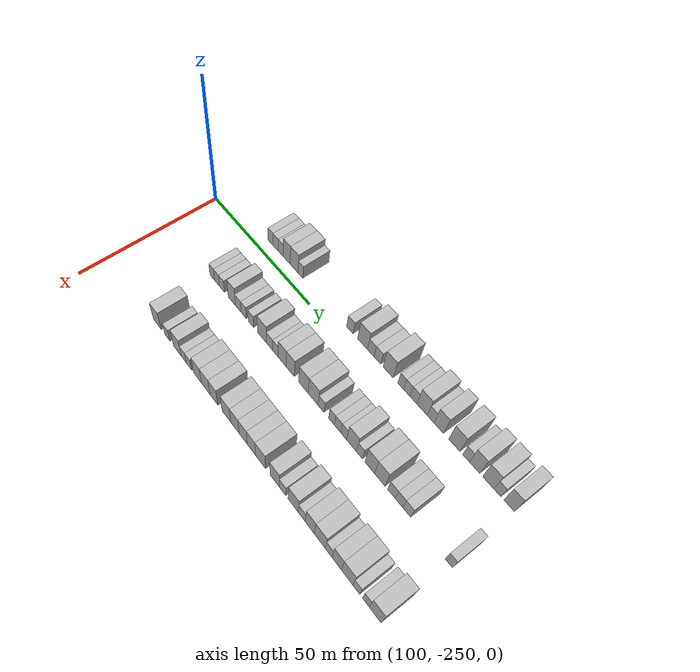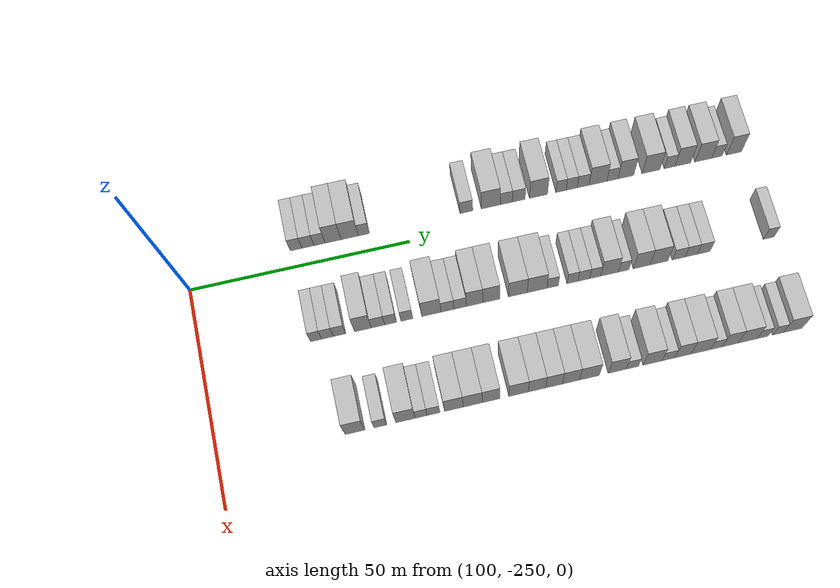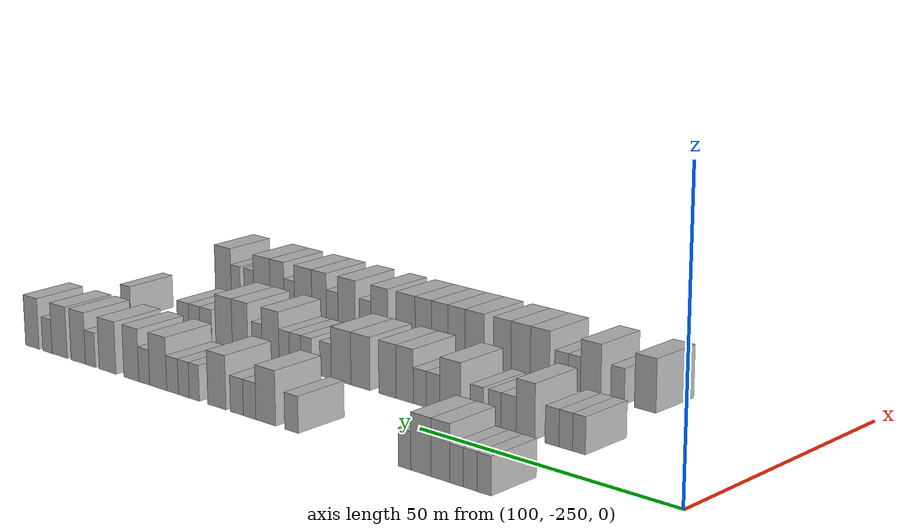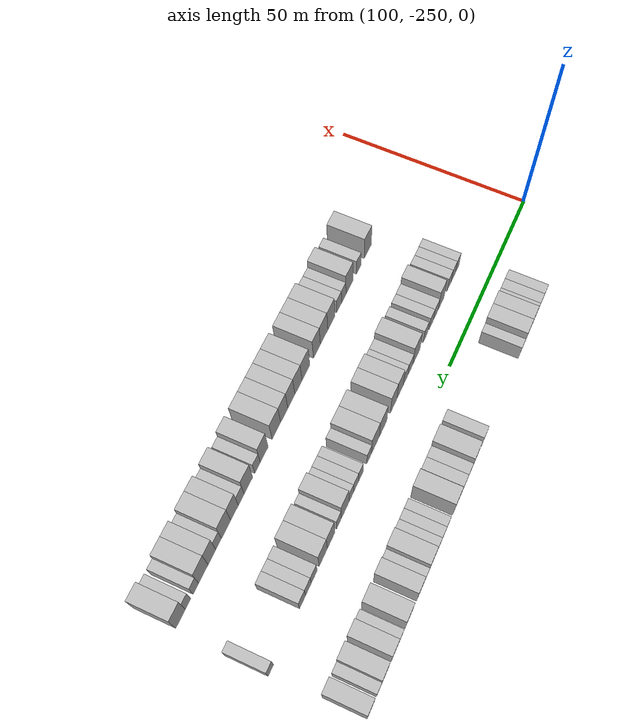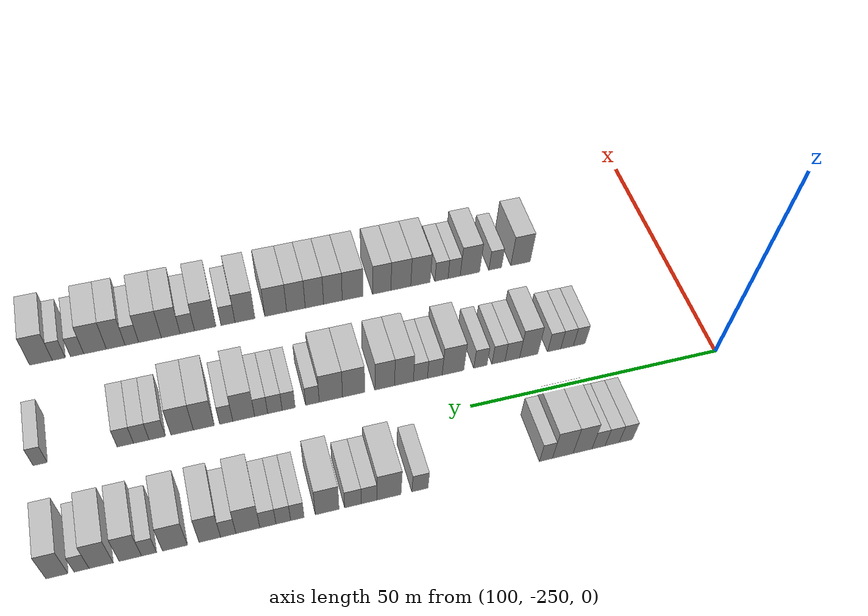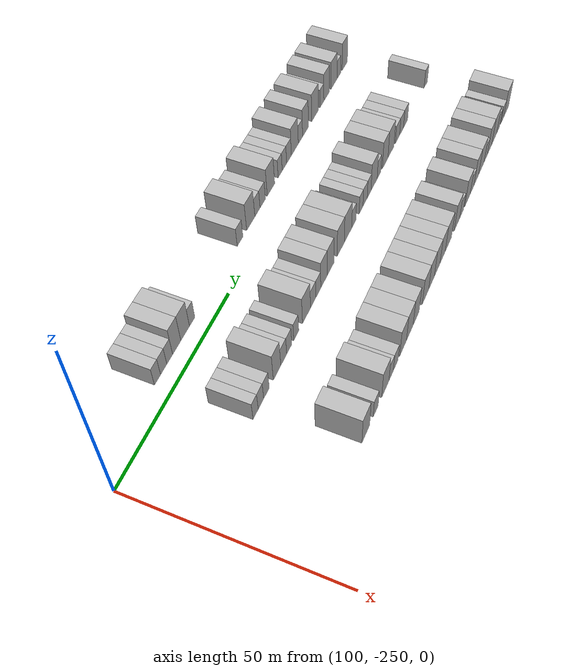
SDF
<sdf version="1.6">
 <world name="default">
  <model name="building_613">
   <static>1</static>
   <pose>91.0000 -225.2650 0 0.000000 0.000000 0.000000</pose>
   <link name="link">
    <pose>0 0 3.00 0 0 0</pose>
    <collision name="collision"><geometry><box><size>10.0000 2.6324 6.0000</size></box></geometry></collision>
    <visual name="visual">
     <cast_shadows>0</cast_shadows>
     <geometry><box><size>10.0000 2.6324 6.0000</size></box></geometry>
     <material>
      <script>
       <uri>model://HANNAS_wall/materials/scripts</uri>
       <uri>model://HANNAS_wall/materials/textures</uri>
       <name>vrc/HANNAS_wall</name>
      </script>
     </material>
    </visual>
   </link>
  </model>
  <model name="building_614">
   <static>1</static>
   <pose>91.0000 -222.5758 0 0.000000 0.000000 0.000000</pose>
   <link name="link">
    <pose>0 0 3.00 0 0 0</pose>
    <collision name="collision"><geometry><box><size>10.0000 2.7462 6.0000</size></box></geometry></collision>
    <visual name="visual">
     <cast_shadows>0</cast_shadows>
     <geometry><box><size>10.0000 2.7462 6.0000</size></box></geometry>
     <material>
      <script>
       <uri>model://HANNAS_wall/materials/scripts</uri>
       <uri>model://HANNAS_wall/materials/textures</uri>
       <name>vrc/HANNAS_wall</name>
      </script>
     </material>
    </visual>
   </link>
  </model>
  <model name="building_615">
   <static>1</static>
   <pose>91.0000 -219.9265 0 0.000000 0.000000 0.000000</pose>
   <link name="link">
    <pose>0 0 3.00 0 0 0</pose>
    <collision name="collision"><geometry><box><size>10.0000 2.5523 6.0000</size></box></geometry></collision>
    <visual name="visual">
     <cast_shadows>0</cast_shadows>
     <geometry><box><size>10.0000 2.5523 6.0000</size></box></geometry>
     <material>
      <script>
       <uri>model://HANNAS_wall/materials/scripts</uri>
       <uri>model://HANNAS_wall/materials/textures</uri>
       <name>vrc/HANNAS_wall</name>
      </script>
     </material>
    </visual>
   </link>
  </model>
  <model name="building_616">
   <static>1</static>
   <pose>91.0000 -216.8252 0 0.000000 0.000000 0.000000</pose>
   <link name="link">
    <pose>0 0 4.50 0 0 0</pose>
    <collision name="collision"><geometry><box><size>10.0000 3.6504 9.0000</size></box></geometry></collision>
    <visual name="visual">
     <cast_shadows>0</cast_shadows>
     <geometry><box><size>10.0000 3.6504 9.0000</size></box></geometry>
     <material>
      <script>
       <uri>model://HANNAS_wall/materials/scripts</uri>
       <uri>model://HANNAS_wall/materials/textures</uri>
       <name>vrc/HANNAS_wall</name>
      </script>
     </material>
    </visual>
   </link>
  </model>
  <model name="building_617">
   <static>1</static>
   <pose>91.0000 -213.0126 0 0.000000 0.000000 0.000000</pose>
   <link name="link">
    <pose>0 0 4.50 0 0 0</pose>
    <collision name="collision"><geometry><box><size>10.0000 3.9747 9.0000</size></box></geometry></collision>
    <visual name="visual">
     <cast_shadows>0</cast_shadows>
     <geometry><box><size>10.0000 3.9747 9.0000</size></box></geometry>
     <material>
      <script>
       <uri>model://HANNAS_wall/materials/scripts</uri>
       <uri>model://HANNAS_wall/materials/textures</uri>
       <name>vrc/HANNAS_wall</name>
      </script>
     </material>
    </visual>
   </link>
  </model>
  <model name="building_618">
   <static>1</static>
   <pose>91.0000 -209.7760 0 0.000000 0.000000 0.000000</pose>
   <link name="link">
    <pose>0 0 3.00 0 0 0</pose>
    <collision name="collision"><geometry><box><size>10.0000 2.4985 6.0000</size></box></geometry></collision>
    <visual name="visual">
     <cast_shadows>0</cast_shadows>
     <geometry><box><size>10.0000 2.4985 6.0000</size></box></geometry>
     <material>
      <script>
       <uri>model://HANNAS_wall/materials/scripts</uri>
       <uri>model://HANNAS_wall/materials/textures</uri>
       <name>vrc/HANNAS_wall</name>
      </script>
     </material>
    </visual>
   </link>
  </model>
  <model name="building_619">
   <static>1</static>
   <pose>91.0000 -186.0560 0 0.000000 0.000000 0.000000</pose>
   <link name="link">
    <pose>0 0 3.00 0 0 0</pose>
    <collision name="collision"><geometry><box><size>10.0000 2.9805 6.0000</size></box></geometry></collision>
    <visual name="visual">
     <cast_shadows>0</cast_shadows>
     <geometry><box><size>10.0000 2.9805 6.0000</size></box></geometry>
     <material>
      <script>
       <uri>model://HANNAS_wall/materials/scripts</uri>
       <uri>model://HANNAS_wall/materials/textures</uri>
       <name>vrc/HANNAS_wall</name>
      </script>
     </material>
    </visual>
   </link>
  </model>
  <model name="building_620">
   <static>1</static>
   <pose>91.0000 -180.3499 0 0.000000 0.000000 0.000000</pose>
   <link name="link">
    <pose>0 0 4.50 0 0 0</pose>
    <collision name="collision"><geometry><box><size>10.0000 4.4319 9.0000</size></box></geometry></collision>
    <visual name="visual">
     <cast_shadows>0</cast_shadows>
     <geometry><box><size>10.0000 4.4319 9.0000</size></box></geometry>
     <material>
      <script>
       <uri>model://HANNAS_wall/materials/scripts</uri>
       <uri>model://HANNAS_wall/materials/textures</uri>
       <name>vrc/HANNAS_wall</name>
      </script>
     </material>
    </visual>
   </link>
  </model>
  <model name="building_621">
   <static>1</static>
   <pose>91.0000 -176.7166 0 0.000000 0.000000 0.000000</pose>
   <link name="link">
    <pose>0 0 3.00 0 0 0</pose>
    <collision name="collision"><geometry><box><size>10.0000 2.8346 6.0000</size></box></geometry></collision>
    <visual name="visual">
     <cast_shadows>0</cast_shadows>
     <geometry><box><size>10.0000 2.8346 6.0000</size></box></geometry>
     <material>
      <script>
       <uri>model://HANNAS_wall/materials/scripts</uri>
       <uri>model://HANNAS_wall/materials/textures</uri>
       <name>vrc/HANNAS_wall</name>
      </script>
     </material>
    </visual>
   </link>
  </model>
  <model name="building_622">
   <static>1</static>
   <pose>91.0000 -173.8030 0 0.000000 0.000000 0.000000</pose>
   <link name="link">
    <pose>0 0 3.00 0 0 0</pose>
    <collision name="collision"><geometry><box><size>10.0000 2.9927 6.0000</size></box></geometry></collision>
    <visual name="visual">
     <cast_shadows>0</cast_shadows>
     <geometry><box><size>10.0000 2.9927 6.0000</size></box></geometry>
     <material>
      <script>
       <uri>model://HANNAS_wall/materials/scripts</uri>
       <uri>model://HANNAS_wall/materials/textures</uri>
       <name>vrc/HANNAS_wall</name>
      </script>
     </material>
    </visual>
   </link>
  </model>
  <model name="building_623">
   <static>1</static>
   <pose>91.0000 -169.1819 0 0.000000 0.000000 0.000000</pose>
   <link name="link">
    <pose>0 0 4.50 0 0 0</pose>
    <collision name="collision"><geometry><box><size>10.0000 4.2495 9.0000</size></box></geometry></collision>
    <visual name="visual">
     <cast_shadows>0</cast_shadows>
     <geometry><box><size>10.0000 4.2495 9.0000</size></box></geometry>
     <material>
      <script>
       <uri>model://HANNAS_wall/materials/scripts</uri>
       <uri>model://HANNAS_wall/materials/textures</uri>
       <name>vrc/HANNAS_wall</name>
      </script>
     </material>
    </visual>
   </link>
  </model>
  <model name="building_624">
   <static>1</static>
   <pose>91.0000 -163.8563 0 0.000000 0.000000 0.000000</pose>
   <link name="link">
    <pose>0 0 3.00 0 0 0</pose>
    <collision name="collision"><geometry><box><size>10.0000 2.4017 6.0000</size></box></geometry></collision>
    <visual name="visual">
     <cast_shadows>0</cast_shadows>
     <geometry><box><size>10.0000 2.4017 6.0000</size></box></geometry>
     <material>
      <script>
       <uri>model://HANNAS_wall/materials/scripts</uri>
       <uri>model://HANNAS_wall/materials/textures</uri>
       <name>vrc/HANNAS_wall</name>
      </script>
     </material>
    </visual>
   </link>
  </model>
  <model name="building_625">
   <static>1</static>
   <pose>91.0000 -161.3566 0 0.000000 0.000000 0.000000</pose>
   <link name="link">
    <pose>0 0 3.00 0 0 0</pose>
    <collision name="collision"><geometry><box><size>10.0000 2.5976 6.0000</size></box></geometry></collision>
    <visual name="visual">
     <cast_shadows>0</cast_shadows>
     <geometry><box><size>10.0000 2.5976 6.0000</size></box></geometry>
     <material>
      <script>
       <uri>model://HANNAS_wall/materials/scripts</uri>
       <uri>model://HANNAS_wall/materials/textures</uri>
       <name>vrc/HANNAS_wall</name>
      </script>
     </material>
    </visual>
   </link>
  </model>
  <model name="building_626">
   <static>1</static>
   <pose>91.0000 -158.6432 0 0.000000 0.000000 0.000000</pose>
   <link name="link">
    <pose>0 0 3.00 0 0 0</pose>
    <collision name="collision"><geometry><box><size>10.0000 2.8290 6.0000</size></box></geometry></collision>
    <visual name="visual">
     <cast_shadows>0</cast_shadows>
     <geometry><box><size>10.0000 2.8290 6.0000</size></box></geometry>
     <material>
      <script>
       <uri>model://HANNAS_wall/materials/scripts</uri>
       <uri>model://HANNAS_wall/materials/textures</uri>
       <name>vrc/HANNAS_wall</name>
      </script>
     </material>
    </visual>
   </link>
  </model>
  <model name="building_627">
   <static>1</static>
   <pose>91.0000 -155.1216 0 0.000000 0.000000 0.000000</pose>
   <link name="link">
    <pose>0 0 4.50 0 0 0</pose>
    <collision name="collision"><geometry><box><size>10.0000 4.2142 9.0000</size></box></geometry></collision>
    <visual name="visual">
     <cast_shadows>0</cast_shadows>
     <geometry><box><size>10.0000 4.2142 9.0000</size></box></geometry>
     <material>
      <script>
       <uri>model://HANNAS_wall/materials/scripts</uri>
       <uri>model://HANNAS_wall/materials/textures</uri>
       <name>vrc/HANNAS_wall</name>
      </script>
     </material>
    </visual>
   </link>
  </model>
  <model name="building_628">
   <static>1</static>
   <pose>91.0000 -151.6805 0 0.000000 0.000000 0.000000</pose>
   <link name="link">
    <pose>0 0 3.00 0 0 0</pose>
    <collision name="collision"><geometry><box><size>10.0000 2.6679 6.0000</size></box></geometry></collision>
    <visual name="visual">
     <cast_shadows>0</cast_shadows>
     <geometry><box><size>10.0000 2.6679 6.0000</size></box></geometry>
     <material>
      <script>
       <uri>model://HANNAS_wall/materials/scripts</uri>
       <uri>model://HANNAS_wall/materials/textures</uri>
       <name>vrc/HANNAS_wall</name>
      </script>
     </material>
    </visual>
   </link>
  </model>
  <model name="building_629">
   <static>1</static>
   <pose>91.0000 -148.4720 0 0.000000 0.000000 0.000000</pose>
   <link name="link">
    <pose>0 0 4.50 0 0 0</pose>
    <collision name="collision"><geometry><box><size>10.0000 3.7491 9.0000</size></box></geometry></collision>
    <visual name="visual">
     <cast_shadows>0</cast_shadows>
     <geometry><box><size>10.0000 3.7491 9.0000</size></box></geometry>
     <material>
      <script>
       <uri>model://HANNAS_wall/materials/scripts</uri>
       <uri>model://HANNAS_wall/materials/textures</uri>
       <name>vrc/HANNAS_wall</name>
      </script>
     </material>
    </visual>
   </link>
  </model>
  <model name="building_630">
   <static>1</static>
   <pose>91.0000 -142.4522 0 0.000000 0.000000 0.000000</pose>
   <link name="link">
    <pose>0 0 4.50 0 0 0</pose>
    <collision name="collision"><geometry><box><size>10.0000 4.2907 9.0000</size></box></geometry></collision>
    <visual name="visual">
     <cast_shadows>0</cast_shadows>
     <geometry><box><size>10.0000 4.2907 9.0000</size></box></geometry>
     <material>
      <script>
       <uri>model://HANNAS_wall/materials/scripts</uri>
       <uri>model://HANNAS_wall/materials/textures</uri>
       <name>vrc/HANNAS_wall</name>
      </script>
     </material>
    </visual>
   </link>
  </model>
  <model name="building_631">
   <static>1</static>
   <pose>91.0000 -138.0229 0 0.000000 0.000000 0.000000</pose>
   <link name="link">
    <pose>0 0 3.00 0 0 0</pose>
    <collision name="collision"><geometry><box><size>10.0000 2.5678 6.0000</size></box></geometry></collision>
    <visual name="visual">
     <cast_shadows>0</cast_shadows>
     <geometry><box><size>10.0000 2.5678 6.0000</size></box></geometry>
     <material>
      <script>
       <uri>model://HANNAS_wall/materials/scripts</uri>
       <uri>model://HANNAS_wall/materials/textures</uri>
       <name>vrc/HANNAS_wall</name>
      </script>
     </material>
    </visual>
   </link>
  </model>
  <model name="building_632">
   <static>1</static>
   <pose>91.0000 -134.8380 0 0.000000 0.000000 0.000000</pose>
   <link name="link">
    <pose>0 0 4.50 0 0 0</pose>
    <collision name="collision"><geometry><box><size>10.0000 3.8020 9.0000</size></box></geometry></collision>
    <visual name="visual">
     <cast_shadows>0</cast_shadows>
     <geometry><box><size>10.0000 3.8020 9.0000</size></box></geometry>
     <material>
      <script>
       <uri>model://HANNAS_wall/materials/scripts</uri>
       <uri>model://HANNAS_wall/materials/textures</uri>
       <name>vrc/HANNAS_wall</name>
      </script>
     </material>
    </visual>
   </link>
  </model>
  <model name="building_633">
   <static>1</static>
   <pose>91.0000 -129.9118 0 0.000000 0.000000 0.000000</pose>
   <link name="link">
    <pose>0 0 4.50 0 0 0</pose>
    <collision name="collision"><geometry><box><size>10.0000 4.0505 9.0000</size></box></geometry></collision>
    <visual name="visual">
     <cast_shadows>0</cast_shadows>
     <geometry><box><size>10.0000 4.0505 9.0000</size></box></geometry>
     <material>
      <script>
       <uri>model://HANNAS_wall/materials/scripts</uri>
       <uri>model://HANNAS_wall/materials/textures</uri>
       <name>vrc/HANNAS_wall</name>
      </script>
     </material>
    </visual>
   </link>
  </model>
  <model name="building_634">
   <static>1</static>
   <pose>91.0000 -126.6230 0 0.000000 0.000000 0.000000</pose>
   <link name="link">
    <pose>0 0 3.00 0 0 0</pose>
    <collision name="collision"><geometry><box><size>10.0000 2.5271 6.0000</size></box></geometry></collision>
    <visual name="visual">
     <cast_shadows>0</cast_shadows>
     <geometry><box><size>10.0000 2.5271 6.0000</size></box></geometry>
     <material>
      <script>
       <uri>model://HANNAS_wall/materials/scripts</uri>
       <uri>model://HANNAS_wall/materials/textures</uri>
       <name>vrc/HANNAS_wall</name>
      </script>
     </material>
    </visual>
   </link>
  </model>
  <model name="building_635">
   <static>1</static>
   <pose>91.0000 -122.5244 0 0.000000 0.000000 0.000000</pose>
   <link name="link">
    <pose>0 0 4.50 0 0 0</pose>
    <collision name="collision"><geometry><box><size>10.0000 3.6700 9.0000</size></box></geometry></collision>
    <visual name="visual">
     <cast_shadows>0</cast_shadows>
     <geometry><box><size>10.0000 3.6700 9.0000</size></box></geometry>
     <material>
      <script>
       <uri>model://HANNAS_wall/materials/scripts</uri>
       <uri>model://HANNAS_wall/materials/textures</uri>
       <name>vrc/HANNAS_wall</name>
      </script>
     </material>
    </visual>
   </link>
  </model>
  <model name="building_803">
   <static>1</static>
   <pose>113.0000 -224.8095 0 0.000000 0.000000 0.000000</pose>
   <link name="link">
    <pose>0 0 3.00 0 0 0</pose>
    <collision name="collision"><geometry><box><size>10.0000 2.4473 6.0000</size></box></geometry></collision>
    <visual name="visual">
     <cast_shadows>0</cast_shadows>
     <geometry><box><size>10.0000 2.4473 6.0000</size></box></geometry>
     <material>
      <script>
       <uri>model://HANNAS_wall/materials/scripts</uri>
       <uri>model://HANNAS_wall/materials/textures</uri>
       <name>vrc/HANNAS_wall</name>
      </script>
     </material>
    </visual>
   </link>
  </model>
  <model name="building_804">
   <static>1</static>
   <pose>113.0000 -222.2734 0 0.000000 0.000000 0.000000</pose>
   <link name="link">
    <pose>0 0 3.00 0 0 0</pose>
    <collision name="collision"><geometry><box><size>10.0000 2.6249 6.0000</size></box></geometry></collision>
    <visual name="visual">
     <cast_shadows>0</cast_shadows>
     <geometry><box><size>10.0000 2.6249 6.0000</size></box></geometry>
     <material>
      <script>
       <uri>model://HANNAS_wall/materials/scripts</uri>
       <uri>model://HANNAS_wall/materials/textures</uri>
       <name>vrc/HANNAS_wall</name>
      </script>
     </material>
    </visual>
   </link>
  </model>
  <model name="building_805">
   <static>1</static>
   <pose>113.0000 -219.6023 0 0.000000 0.000000 0.000000</pose>
   <link name="link">
    <pose>0 0 3.00 0 0 0</pose>
    <collision name="collision"><geometry><box><size>10.0000 2.7174 6.0000</size></box></geometry></collision>
    <visual name="visual">
     <cast_shadows>0</cast_shadows>
     <geometry><box><size>10.0000 2.7174 6.0000</size></box></geometry>
     <material>
      <script>
       <uri>model://HANNAS_wall/materials/scripts</uri>
       <uri>model://HANNAS_wall/materials/textures</uri>
       <name>vrc/HANNAS_wall</name>
      </script>
     </material>
    </visual>
   </link>
  </model>
  <model name="building_806">
   <static>1</static>
   <pose>113.0000 -214.3700 0 0.000000 0.000000 0.000000</pose>
   <link name="link">
    <pose>0 0 4.50 0 0 0</pose>
    <collision name="collision"><geometry><box><size>10.0000 3.7471 9.0000</size></box></geometry></collision>
    <visual name="visual">
     <cast_shadows>0</cast_shadows>
     <geometry><box><size>10.0000 3.7471 9.0000</size></box></geometry>
     <material>
      <script>
       <uri>model://HANNAS_wall/materials/scripts</uri>
       <uri>model://HANNAS_wall/materials/textures</uri>
       <name>vrc/HANNAS_wall</name>
      </script>
     </material>
    </visual>
   </link>
  </model>
  <model name="building_807">
   <static>1</static>
   <pose>113.0000 -210.9999 0 0.000000 0.000000 0.000000</pose>
   <link name="link">
    <pose>0 0 3.00 0 0 0</pose>
    <collision name="collision"><geometry><box><size>10.0000 2.9931 6.0000</size></box></geometry></collision>
    <visual name="visual">
     <cast_shadows>0</cast_shadows>
     <geometry><box><size>10.0000 2.9931 6.0000</size></box></geometry>
     <material>
      <script>
       <uri>model://HANNAS_wall/materials/scripts</uri>
       <uri>model://HANNAS_wall/materials/textures</uri>
       <name>vrc/HANNAS_wall</name>
      </script>
     </material>
    </visual>
   </link>
  </model>
  <model name="building_808">
   <static>1</static>
   <pose>113.0000 -208.1831 0 0.000000 0.000000 0.000000</pose>
   <link name="link">
    <pose>0 0 3.00 0 0 0</pose>
    <collision name="collision"><geometry><box><size>10.0000 2.6407 6.0000</size></box></geometry></collision>
    <visual name="visual">
     <cast_shadows>0</cast_shadows>
     <geometry><box><size>10.0000 2.6407 6.0000</size></box></geometry>
     <material>
      <script>
       <uri>model://HANNAS_wall/materials/scripts</uri>
       <uri>model://HANNAS_wall/materials/textures</uri>
       <name>vrc/HANNAS_wall</name>
      </script>
     </material>
    </visual>
   </link>
  </model>
  <model name="building_809">
   <static>1</static>
   <pose>113.0000 -204.5242 0 0.000000 0.000000 0.000000</pose>
   <link name="link">
    <pose>0 0 3.00 0 0 0</pose>
    <collision name="collision"><geometry><box><size>10.0000 2.6770 6.0000</size></box></geometry></collision>
    <visual name="visual">
     <cast_shadows>0</cast_shadows>
     <geometry><box><size>10.0000 2.6770 6.0000</size></box></geometry>
     <material>
      <script>
       <uri>model://HANNAS_wall/materials/scripts</uri>
       <uri>model://HANNAS_wall/materials/textures</uri>
       <name>vrc/HANNAS_wall</name>
      </script>
     </material>
    </visual>
   </link>
  </model>
  <model name="building_810">
   <static>1</static>
   <pose>113.0000 -199.0123 0 0.000000 0.000000 0.000000</pose>
   <link name="link">
    <pose>0 0 4.50 0 0 0</pose>
    <collision name="collision"><geometry><box><size>10.0000 4.3470 9.0000</size></box></geometry></collision>
    <visual name="visual">
     <cast_shadows>0</cast_shadows>
     <geometry><box><size>10.0000 4.3470 9.0000</size></box></geometry>
     <material>
      <script>
       <uri>model://HANNAS_wall/materials/scripts</uri>
       <uri>model://HANNAS_wall/materials/textures</uri>
       <name>vrc/HANNAS_wall</name>
      </script>
     </material>
    </visual>
   </link>
  </model>
  <model name="building_811">
   <static>1</static>
   <pose>113.0000 -195.3739 0 0.000000 0.000000 0.000000</pose>
   <link name="link">
    <pose>0 0 3.00 0 0 0</pose>
    <collision name="collision"><geometry><box><size>10.0000 2.9297 6.0000</size></box></geometry></collision>
    <visual name="visual">
     <cast_shadows>0</cast_shadows>
     <geometry><box><size>10.0000 2.9297 6.0000</size></box></geometry>
     <material>
      <script>
       <uri>model://HANNAS_wall/materials/scripts</uri>
       <uri>model://HANNAS_wall/materials/textures</uri>
       <name>vrc/HANNAS_wall</name>
      </script>
     </material>
    </visual>
   </link>
  </model>
  <model name="building_812">
   <static>1</static>
   <pose>113.0000 -192.5090 0 0.000000 0.000000 0.000000</pose>
   <link name="link">
    <pose>0 0 3.00 0 0 0</pose>
    <collision name="collision"><geometry><box><size>10.0000 2.8000 6.0000</size></box></geometry></collision>
    <visual name="visual">
     <cast_shadows>0</cast_shadows>
     <geometry><box><size>10.0000 2.8000 6.0000</size></box></geometry>
     <material>
      <script>
       <uri>model://HANNAS_wall/materials/scripts</uri>
       <uri>model://HANNAS_wall/materials/textures</uri>
       <name>vrc/HANNAS_wall</name>
      </script>
     </material>
    </visual>
   </link>
  </model>
  <model name="building_813">
   <static>1</static>
   <pose>113.0000 -189.2434 0 0.000000 0.000000 0.000000</pose>
   <link name="link">
    <pose>0 0 4.50 0 0 0</pose>
    <collision name="collision"><geometry><box><size>10.0000 3.7311 9.0000</size></box></geometry></collision>
    <visual name="visual">
     <cast_shadows>0</cast_shadows>
     <geometry><box><size>10.0000 3.7311 9.0000</size></box></geometry>
     <material>
      <script>
       <uri>model://HANNAS_wall/materials/scripts</uri>
       <uri>model://HANNAS_wall/materials/textures</uri>
       <name>vrc/HANNAS_wall</name>
      </script>
     </material>
    </visual>
   </link>
  </model>
  <model name="building_814">
   <static>1</static>
   <pose>113.0000 -185.4632 0 0.000000 0.000000 0.000000</pose>
   <link name="link">
    <pose>0 0 4.50 0 0 0</pose>
    <collision name="collision"><geometry><box><size>10.0000 3.8293 9.0000</size></box></geometry></collision>
    <visual name="visual">
     <cast_shadows>0</cast_shadows>
     <geometry><box><size>10.0000 3.8293 9.0000</size></box></geometry>
     <material>
      <script>
       <uri>model://HANNAS_wall/materials/scripts</uri>
       <uri>model://HANNAS_wall/materials/textures</uri>
       <name>vrc/HANNAS_wall</name>
      </script>
     </material>
    </visual>
   </link>
  </model>
  <model name="building_815">
   <static>1</static>
   <pose>113.0000 -179.4053 0 0.000000 0.000000 0.000000</pose>
   <link name="link">
    <pose>0 0 4.50 0 0 0</pose>
    <collision name="collision"><geometry><box><size>10.0000 4.2865 9.0000</size></box></geometry></collision>
    <visual name="visual">
     <cast_shadows>0</cast_shadows>
     <geometry><box><size>10.0000 4.2865 9.0000</size></box></geometry>
     <material>
      <script>
       <uri>model://HANNAS_wall/materials/scripts</uri>
       <uri>model://HANNAS_wall/materials/textures</uri>
       <name>vrc/HANNAS_wall</name>
      </script>
     </material>
    </visual>
   </link>
  </model>
  <model name="building_816">
   <static>1</static>
   <pose>113.0000 -175.0159 0 0.000000 0.000000 0.000000</pose>
   <link name="link">
    <pose>0 0 4.50 0 0 0</pose>
    <collision name="collision"><geometry><box><size>10.0000 4.4923 9.0000</size></box></geometry></collision>
    <visual name="visual">
     <cast_shadows>0</cast_shadows>
     <geometry><box><size>10.0000 4.4923 9.0000</size></box></geometry>
     <material>
      <script>
       <uri>model://HANNAS_wall/materials/scripts</uri>
       <uri>model://HANNAS_wall/materials/textures</uri>
       <name>vrc/HANNAS_wall</name>
      </script>
     </material>
    </visual>
   </link>
  </model>
  <model name="building_817">
   <static>1</static>
   <pose>113.0000 -171.4652 0 0.000000 0.000000 0.000000</pose>
   <link name="link">
    <pose>0 0 3.00 0 0 0</pose>
    <collision name="collision"><geometry><box><size>10.0000 2.6091 6.0000</size></box></geometry></collision>
    <visual name="visual">
     <cast_shadows>0</cast_shadows>
     <geometry><box><size>10.0000 2.6091 6.0000</size></box></geometry>
     <material>
      <script>
       <uri>model://HANNAS_wall/materials/scripts</uri>
       <uri>model://HANNAS_wall/materials/textures</uri>
       <name>vrc/HANNAS_wall</name>
      </script>
     </material>
    </visual>
   </link>
  </model>
  <model name="building_818">
   <static>1</static>
   <pose>113.0000 -166.9174 0 0.000000 0.000000 0.000000</pose>
   <link name="link">
    <pose>0 0 3.00 0 0 0</pose>
    <collision name="collision"><geometry><box><size>10.0000 2.4864 6.0000</size></box></geometry></collision>
    <visual name="visual">
     <cast_shadows>0</cast_shadows>
     <geometry><box><size>10.0000 2.4864 6.0000</size></box></geometry>
     <material>
      <script>
       <uri>model://HANNAS_wall/materials/scripts</uri>
       <uri>model://HANNAS_wall/materials/textures</uri>
       <name>vrc/HANNAS_wall</name>
      </script>
     </material>
    </visual>
   </link>
  </model>
  <model name="building_819">
   <static>1</static>
   <pose>113.0000 -164.2951 0 0.000000 0.000000 0.000000</pose>
   <link name="link">
    <pose>0 0 3.00 0 0 0</pose>
    <collision name="collision"><geometry><box><size>10.0000 2.7584 6.0000</size></box></geometry></collision>
    <visual name="visual">
     <cast_shadows>0</cast_shadows>
     <geometry><box><size>10.0000 2.7584 6.0000</size></box></geometry>
     <material>
      <script>
       <uri>model://HANNAS_wall/materials/scripts</uri>
       <uri>model://HANNAS_wall/materials/textures</uri>
       <name>vrc/HANNAS_wall</name>
      </script>
     </material>
    </visual>
   </link>
  </model>
  <model name="building_820">
   <static>1</static>
   <pose>113.0000 -161.6855 0 0.000000 0.000000 0.000000</pose>
   <link name="link">
    <pose>0 0 3.00 0 0 0</pose>
    <collision name="collision"><geometry><box><size>10.0000 2.4607 6.0000</size></box></geometry></collision>
    <visual name="visual">
     <cast_shadows>0</cast_shadows>
     <geometry><box><size>10.0000 2.4607 6.0000</size></box></geometry>
     <material>
      <script>
       <uri>model://HANNAS_wall/materials/scripts</uri>
       <uri>model://HANNAS_wall/materials/textures</uri>
       <name>vrc/HANNAS_wall</name>
      </script>
     </material>
    </visual>
   </link>
  </model>
  <model name="building_821">
   <static>1</static>
   <pose>113.0000 -158.4030 0 0.000000 0.000000 0.000000</pose>
   <link name="link">
    <pose>0 0 4.50 0 0 0</pose>
    <collision name="collision"><geometry><box><size>10.0000 4.1045 9.0000</size></box></geometry></collision>
    <visual name="visual">
     <cast_shadows>0</cast_shadows>
     <geometry><box><size>10.0000 4.1045 9.0000</size></box></geometry>
     <material>
      <script>
       <uri>model://HANNAS_wall/materials/scripts</uri>
       <uri>model://HANNAS_wall/materials/textures</uri>
       <name>vrc/HANNAS_wall</name>
      </script>
     </material>
    </visual>
   </link>
  </model>
  <model name="building_822">
   <static>1</static>
   <pose>113.0000 -155.1134 0 0.000000 0.000000 0.000000</pose>
   <link name="link">
    <pose>0 0 3.00 0 0 0</pose>
    <collision name="collision"><geometry><box><size>10.0000 2.4747 6.0000</size></box></geometry></collision>
    <visual name="visual">
     <cast_shadows>0</cast_shadows>
     <geometry><box><size>10.0000 2.4747 6.0000</size></box></geometry>
     <material>
      <script>
       <uri>model://HANNAS_wall/materials/scripts</uri>
       <uri>model://HANNAS_wall/materials/textures</uri>
       <name>vrc/HANNAS_wall</name>
      </script>
     </material>
    </visual>
   </link>
  </model>
  <model name="building_823">
   <static>1</static>
   <pose>113.0000 -150.9324 0 0.000000 0.000000 0.000000</pose>
   <link name="link">
    <pose>0 0 4.50 0 0 0</pose>
    <collision name="collision"><geometry><box><size>10.0000 3.8872 9.0000</size></box></geometry></collision>
    <visual name="visual">
     <cast_shadows>0</cast_shadows>
     <geometry><box><size>10.0000 3.8872 9.0000</size></box></geometry>
     <material>
      <script>
       <uri>model://HANNAS_wall/materials/scripts</uri>
       <uri>model://HANNAS_wall/materials/textures</uri>
       <name>vrc/HANNAS_wall</name>
      </script>
     </material>
    </visual>
   </link>
  </model>
  <model name="building_824">
   <static>1</static>
   <pose>113.0000 -146.9062 0 0.000000 0.000000 0.000000</pose>
   <link name="link">
    <pose>0 0 4.50 0 0 0</pose>
    <collision name="collision"><geometry><box><size>10.0000 4.1653 9.0000</size></box></geometry></collision>
    <visual name="visual">
     <cast_shadows>0</cast_shadows>
     <geometry><box><size>10.0000 4.1653 9.0000</size></box></geometry>
     <material>
      <script>
       <uri>model://HANNAS_wall/materials/scripts</uri>
       <uri>model://HANNAS_wall/materials/textures</uri>
       <name>vrc/HANNAS_wall</name>
      </script>
     </material>
    </visual>
   </link>
  </model>
  <model name="building_825">
   <static>1</static>
   <pose>113.0000 -142.3256 0 0.000000 0.000000 0.000000</pose>
   <link name="link">
    <pose>0 0 3.00 0 0 0</pose>
    <collision name="collision"><geometry><box><size>10.0000 2.9959 6.0000</size></box></geometry></collision>
    <visual name="visual">
     <cast_shadows>0</cast_shadows>
     <geometry><box><size>10.0000 2.9959 6.0000</size></box></geometry>
     <material>
      <script>
       <uri>model://HANNAS_wall/materials/scripts</uri>
       <uri>model://HANNAS_wall/materials/textures</uri>
       <name>vrc/HANNAS_wall</name>
      </script>
     </material>
    </visual>
   </link>
  </model>
  <model name="building_826">
   <static>1</static>
   <pose>113.0000 -139.4045 0 0.000000 0.000000 0.000000</pose>
   <link name="link">
    <pose>0 0 3.00 0 0 0</pose>
    <collision name="collision"><geometry><box><size>10.0000 2.8463 6.0000</size></box></geometry></collision>
    <visual name="visual">
     <cast_shadows>0</cast_shadows>
     <geometry><box><size>10.0000 2.8463 6.0000</size></box></geometry>
     <material>
      <script>
       <uri>model://HANNAS_wall/materials/scripts</uri>
       <uri>model://HANNAS_wall/materials/textures</uri>
       <name>vrc/HANNAS_wall</name>
      </script>
     </material>
    </visual>
   </link>
  </model>
  <model name="building_827">
   <static>1</static>
   <pose>113.0000 -136.4875 0 0.000000 0.000000 0.000000</pose>
   <link name="link">
    <pose>0 0 3.00 0 0 0</pose>
    <collision name="collision"><geometry><box><size>10.0000 2.9878 6.0000</size></box></geometry></collision>
    <visual name="visual">
     <cast_shadows>0</cast_shadows>
     <geometry><box><size>10.0000 2.9878 6.0000</size></box></geometry>
     <material>
      <script>
       <uri>model://HANNAS_wall/materials/scripts</uri>
       <uri>model://HANNAS_wall/materials/textures</uri>
       <name>vrc/HANNAS_wall</name>
      </script>
     </material>
    </visual>
   </link>
  </model>
  <model name="building_828">
   <static>1</static>
   <pose>113.0000 -121.1724 0 0.000000 0.000000 0.000000</pose>
   <link name="link">
    <pose>0 0 3.00 0 0 0</pose>
    <collision name="collision"><geometry><box><size>10.0000 2.5475 6.0000</size></box></geometry></collision>
    <visual name="visual">
     <cast_shadows>0</cast_shadows>
     <geometry><box><size>10.0000 2.5475 6.0000</size></box></geometry>
     <material>
      <script>
       <uri>model://HANNAS_wall/materials/scripts</uri>
       <uri>model://HANNAS_wall/materials/textures</uri>
       <name>vrc/HANNAS_wall</name>
      </script>
     </material>
    </visual>
   </link>
  </model>
  <model name="building_971">
   <static>1</static>
   <pose>135.0000 -220.4615 0 0.000000 0.000000 0.000000</pose>
   <link name="link">
    <pose>0 0 4.50 0 0 0</pose>
    <collision name="collision"><geometry><box><size>10.0000 4.2523 9.0000</size></box></geometry></collision>
    <visual name="visual">
     <cast_shadows>0</cast_shadows>
     <geometry><box><size>10.0000 4.2523 9.0000</size></box></geometry>
     <material>
      <script>
       <uri>model://HANNAS_wall/materials/scripts</uri>
       <uri>model://HANNAS_wall/materials/textures</uri>
       <name>vrc/HANNAS_wall</name>
      </script>
     </material>
    </visual>
   </link>
  </model>
  <model name="building_972">
   <static>1</static>
   <pose>135.0000 -214.9565 0 0.000000 0.000000 0.000000</pose>
   <link name="link">
    <pose>0 0 3.00 0 0 0</pose>
    <collision name="collision"><geometry><box><size>10.0000 2.7577 6.0000</size></box></geometry></collision>
    <visual name="visual">
     <cast_shadows>0</cast_shadows>
     <geometry><box><size>10.0000 2.7577 6.0000</size></box></geometry>
     <material>
      <script>
       <uri>model://HANNAS_wall/materials/scripts</uri>
       <uri>model://HANNAS_wall/materials/textures</uri>
       <name>vrc/HANNAS_wall</name>
      </script>
     </material>
    </visual>
   </link>
  </model>
  <model name="building_973">
   <static>1</static>
   <pose>135.0000 -209.4856 0 0.000000 0.000000 0.000000</pose>
   <link name="link">
    <pose>0 0 4.50 0 0 0</pose>
    <collision name="collision"><geometry><box><size>10.0000 4.1841 9.0000</size></box></geometry></collision>
    <visual name="visual">
     <cast_shadows>0</cast_shadows>
     <geometry><box><size>10.0000 4.1841 9.0000</size></box></geometry>
     <material>
      <script>
       <uri>model://HANNAS_wall/materials/scripts</uri>
       <uri>model://HANNAS_wall/materials/textures</uri>
       <name>vrc/HANNAS_wall</name>
      </script>
     </material>
    </visual>
   </link>
  </model>
  <model name="building_974">
   <static>1</static>
   <pose>135.0000 -206.0922 0 0.000000 0.000000 0.000000</pose>
   <link name="link">
    <pose>0 0 3.00 0 0 0</pose>
    <collision name="collision"><geometry><box><size>10.0000 2.6028 6.0000</size></box></geometry></collision>
    <visual name="visual">
     <cast_shadows>0</cast_shadows>
     <geometry><box><size>10.0000 2.6028 6.0000</size></box></geometry>
     <material>
      <script>
       <uri>model://HANNAS_wall/materials/scripts</uri>
       <uri>model://HANNAS_wall/materials/textures</uri>
       <name>vrc/HANNAS_wall</name>
      </script>
     </material>
    </visual>
   </link>
  </model>
  <model name="building_975">
   <static>1</static>
   <pose>135.0000 -203.3800 0 0.000000 0.000000 0.000000</pose>
   <link name="link">
    <pose>0 0 3.00 0 0 0</pose>
    <collision name="collision"><geometry><box><size>10.0000 2.8216 6.0000</size></box></geometry></collision>
    <visual name="visual">
     <cast_shadows>0</cast_shadows>
     <geometry><box><size>10.0000 2.8216 6.0000</size></box></geometry>
     <material>
      <script>
       <uri>model://HANNAS_wall/materials/scripts</uri>
       <uri>model://HANNAS_wall/materials/textures</uri>
       <name>vrc/HANNAS_wall</name>
      </script>
     </material>
    </visual>
   </link>
  </model>
  <model name="building_976">
   <static>1</static>
   <pose>135.0000 -198.9129 0 0.000000 0.000000 0.000000</pose>
   <link name="link">
    <pose>0 0 4.50 0 0 0</pose>
    <collision name="collision"><geometry><box><size>10.0000 4.1125 9.0000</size></box></geometry></collision>
    <visual name="visual">
     <cast_shadows>0</cast_shadows>
     <geometry><box><size>10.0000 4.1125 9.0000</size></box></geometry>
     <material>
      <script>
       <uri>model://HANNAS_wall/materials/scripts</uri>
       <uri>model://HANNAS_wall/materials/textures</uri>
       <name>vrc/HANNAS_wall</name>
      </script>
     </material>
    </visual>
   </link>
  </model>
  <model name="building_977">
   <static>1</static>
   <pose>135.0000 -194.7643 0 0.000000 0.000000 0.000000</pose>
   <link name="link">
    <pose>0 0 4.50 0 0 0</pose>
    <collision name="collision"><geometry><box><size>10.0000 4.1847 9.0000</size></box></geometry></collision>
    <visual name="visual">
     <cast_shadows>0</cast_shadows>
     <geometry><box><size>10.0000 4.1847 9.0000</size></box></geometry>
     <material>
      <script>
       <uri>model://HANNAS_wall/materials/scripts</uri>
       <uri>model://HANNAS_wall/materials/textures</uri>
       <name>vrc/HANNAS_wall</name>
      </script>
     </material>
    </visual>
   </link>
  </model>
  <model name="building_978">
   <static>1</static>
   <pose>135.0000 -190.7522 0 0.000000 0.000000 0.000000</pose>
   <link name="link">
    <pose>0 0 4.50 0 0 0</pose>
    <collision name="collision"><geometry><box><size>10.0000 3.8395 9.0000</size></box></geometry></collision>
    <visual name="visual">
     <cast_shadows>0</cast_shadows>
     <geometry><box><size>10.0000 3.8395 9.0000</size></box></geometry>
     <material>
      <script>
       <uri>model://HANNAS_wall/materials/scripts</uri>
       <uri>model://HANNAS_wall/materials/textures</uri>
       <name>vrc/HANNAS_wall</name>
      </script>
     </material>
    </visual>
   </link>
  </model>
  <model name="building_979">
   <static>1</static>
   <pose>135.0000 -184.6831 0 0.000000 0.000000 0.000000</pose>
   <link name="link">
    <pose>0 0 4.50 0 0 0</pose>
    <collision name="collision"><geometry><box><size>10.0000 4.2989 9.0000</size></box></geometry></collision>
    <visual name="visual">
     <cast_shadows>0</cast_shadows>
     <geometry><box><size>10.0000 4.2989 9.0000</size></box></geometry>
     <material>
      <script>
       <uri>model://HANNAS_wall/materials/scripts</uri>
       <uri>model://HANNAS_wall/materials/textures</uri>
       <name>vrc/HANNAS_wall</name>
      </script>
     </material>
    </visual>
   </link>
  </model>
  <model name="building_980">
   <static>1</static>
   <pose>135.0000 -180.6098 0 0.000000 0.000000 0.000000</pose>
   <link name="link">
    <pose>0 0 4.50 0 0 0</pose>
    <collision name="collision"><geometry><box><size>10.0000 3.8477 9.0000</size></box></geometry></collision>
    <visual name="visual">
     <cast_shadows>0</cast_shadows>
     <geometry><box><size>10.0000 3.8477 9.0000</size></box></geometry>
     <material>
      <script>
       <uri>model://HANNAS_wall/materials/scripts</uri>
       <uri>model://HANNAS_wall/materials/textures</uri>
       <name>vrc/HANNAS_wall</name>
      </script>
     </material>
    </visual>
   </link>
  </model>
  <model name="building_981">
   <static>1</static>
   <pose>135.0000 -176.7970 0 0.000000 0.000000 0.000000</pose>
   <link name="link">
    <pose>0 0 4.50 0 0 0</pose>
    <collision name="collision"><geometry><box><size>10.0000 3.7778 9.0000</size></box></geometry></collision>
    <visual name="visual">
     <cast_shadows>0</cast_shadows>
     <geometry><box><size>10.0000 3.7778 9.0000</size></box></geometry>
     <material>
      <script>
       <uri>model://HANNAS_wall/materials/scripts</uri>
       <uri>model://HANNAS_wall/materials/textures</uri>
       <name>vrc/HANNAS_wall</name>
      </script>
     </material>
    </visual>
   </link>
  </model>
  <model name="building_982">
   <static>1</static>
   <pose>135.0000 -173.0127 0 0.000000 0.000000 0.000000</pose>
   <link name="link">
    <pose>0 0 4.50 0 0 0</pose>
    <collision name="collision"><geometry><box><size>10.0000 3.7908 9.0000</size></box></geometry></collision>
    <visual name="visual">
     <cast_shadows>0</cast_shadows>
     <geometry><box><size>10.0000 3.7908 9.0000</size></box></geometry>
     <material>
      <script>
       <uri>model://HANNAS_wall/materials/scripts</uri>
       <uri>model://HANNAS_wall/materials/textures</uri>
       <name>vrc/HANNAS_wall</name>
      </script>
     </material>
    </visual>
   </link>
  </model>
  <model name="building_983">
   <static>1</static>
   <pose>135.0000 -168.8988 0 0.000000 0.000000 0.000000</pose>
   <link name="link">
    <pose>0 0 4.50 0 0 0</pose>
    <collision name="collision"><geometry><box><size>10.0000 4.4371 9.0000</size></box></geometry></collision>
    <visual name="visual">
     <cast_shadows>0</cast_shadows>
     <geometry><box><size>10.0000 4.4371 9.0000</size></box></geometry>
     <material>
      <script>
       <uri>model://HANNAS_wall/materials/scripts</uri>
       <uri>model://HANNAS_wall/materials/textures</uri>
       <name>vrc/HANNAS_wall</name>
      </script>
     </material>
    </visual>
   </link>
  </model>
  <model name="building_984">
   <static>1</static>
   <pose>135.0000 -162.6687 0 0.000000 0.000000 0.000000</pose>
   <link name="link">
    <pose>0 0 4.50 0 0 0</pose>
    <collision name="collision"><geometry><box><size>10.0000 4.0229 9.0000</size></box></geometry></collision>
    <visual name="visual">
     <cast_shadows>0</cast_shadows>
     <geometry><box><size>10.0000 4.0229 9.0000</size></box></geometry>
     <material>
      <script>
       <uri>model://HANNAS_wall/materials/scripts</uri>
       <uri>model://HANNAS_wall/materials/textures</uri>
       <name>vrc/HANNAS_wall</name>
      </script>
     </material>
    </visual>
   </link>
  </model>
  <model name="building_985">
   <static>1</static>
   <pose>135.0000 -159.2546 0 0.000000 0.000000 0.000000</pose>
   <link name="link">
    <pose>0 0 3.00 0 0 0</pose>
    <collision name="collision"><geometry><box><size>10.0000 2.8053 6.0000</size></box></geometry></collision>
    <visual name="visual">
     <cast_shadows>0</cast_shadows>
     <geometry><box><size>10.0000 2.8053 6.0000</size></box></geometry>
     <material>
      <script>
       <uri>model://HANNAS_wall/materials/scripts</uri>
       <uri>model://HANNAS_wall/materials/textures</uri>
       <name>vrc/HANNAS_wall</name>
      </script>
     </material>
    </visual>
   </link>
  </model>
  <model name="building_986">
   <static>1</static>
   <pose>135.0000 -154.7241 0 0.000000 0.000000 0.000000</pose>
   <link name="link">
    <pose>0 0 4.50 0 0 0</pose>
    <collision name="collision"><geometry><box><size>10.0000 4.2558 9.0000</size></box></geometry></collision>
    <visual name="visual">
     <cast_shadows>0</cast_shadows>
     <geometry><box><size>10.0000 4.2558 9.0000</size></box></geometry>
     <material>
      <script>
       <uri>model://HANNAS_wall/materials/scripts</uri>
       <uri>model://HANNAS_wall/materials/textures</uri>
       <name>vrc/HANNAS_wall</name>
      </script>
     </material>
    </visual>
   </link>
  </model>
  <model name="building_987">
   <static>1</static>
   <pose>135.0000 -151.1660 0 0.000000 0.000000 0.000000</pose>
   <link name="link">
    <pose>0 0 3.00 0 0 0</pose>
    <collision name="collision"><geometry><box><size>10.0000 2.8604 6.0000</size></box></geometry></collision>
    <visual name="visual">
     <cast_shadows>0</cast_shadows>
     <geometry><box><size>10.0000 2.8604 6.0000</size></box></geometry>
     <material>
      <script>
       <uri>model://HANNAS_wall/materials/scripts</uri>
       <uri>model://HANNAS_wall/materials/textures</uri>
       <name>vrc/HANNAS_wall</name>
      </script>
     </material>
    </visual>
   </link>
  </model>
  <model name="building_988">
   <static>1</static>
   <pose>135.0000 -147.8887 0 0.000000 0.000000 0.000000</pose>
   <link name="link">
    <pose>0 0 4.50 0 0 0</pose>
    <collision name="collision"><geometry><box><size>10.0000 3.6943 9.0000</size></box></geometry></collision>
    <visual name="visual">
     <cast_shadows>0</cast_shadows>
     <geometry><box><size>10.0000 3.6943 9.0000</size></box></geometry>
     <material>
      <script>
       <uri>model://HANNAS_wall/materials/scripts</uri>
       <uri>model://HANNAS_wall/materials/textures</uri>
       <name>vrc/HANNAS_wall</name>
      </script>
     </material>
    </visual>
   </link>
  </model>
  <model name="building_989">
   <static>1</static>
   <pose>135.0000 -143.8219 0 0.000000 0.000000 0.000000</pose>
   <link name="link">
    <pose>0 0 4.50 0 0 0</pose>
    <collision name="collision"><geometry><box><size>10.0000 4.4394 9.0000</size></box></geometry></collision>
    <visual name="visual">
     <cast_shadows>0</cast_shadows>
     <geometry><box><size>10.0000 4.4394 9.0000</size></box></geometry>
     <material>
      <script>
       <uri>model://HANNAS_wall/materials/scripts</uri>
       <uri>model://HANNAS_wall/materials/textures</uri>
       <name>vrc/HANNAS_wall</name>
      </script>
     </material>
    </visual>
   </link>
  </model>
  <model name="building_990">
   <static>1</static>
   <pose>135.0000 -140.2691 0 0.000000 0.000000 0.000000</pose>
   <link name="link">
    <pose>0 0 3.00 0 0 0</pose>
    <collision name="collision"><geometry><box><size>10.0000 2.6662 6.0000</size></box></geometry></collision>
    <visual name="visual">
     <cast_shadows>0</cast_shadows>
     <geometry><box><size>10.0000 2.6662 6.0000</size></box></geometry>
     <material>
      <script>
       <uri>model://HANNAS_wall/materials/scripts</uri>
       <uri>model://HANNAS_wall/materials/textures</uri>
       <name>vrc/HANNAS_wall</name>
      </script>
     </material>
    </visual>
   </link>
  </model>
  <model name="building_991">
   <static>1</static>
   <pose>135.0000 -137.1243 0 0.000000 0.000000 0.000000</pose>
   <link name="link">
    <pose>0 0 4.50 0 0 0</pose>
    <collision name="collision"><geometry><box><size>10.0000 3.6235 9.0000</size></box></geometry></collision>
    <visual name="visual">
     <cast_shadows>0</cast_shadows>
     <geometry><box><size>10.0000 3.6235 9.0000</size></box></geometry>
     <material>
      <script>
       <uri>model://HANNAS_wall/materials/scripts</uri>
       <uri>model://HANNAS_wall/materials/textures</uri>
       <name>vrc/HANNAS_wall</name>
      </script>
     </material>
    </visual>
   </link>
  </model>
  <model name="building_992">
   <static>1</static>
   <pose>135.0000 -133.1325 0 0.000000 0.000000 0.000000</pose>
   <link name="link">
    <pose>0 0 4.50 0 0 0</pose>
    <collision name="collision"><geometry><box><size>10.0000 4.3600 9.0000</size></box></geometry></collision>
    <visual name="visual">
     <cast_shadows>0</cast_shadows>
     <geometry><box><size>10.0000 4.3600 9.0000</size></box></geometry>
     <material>
      <script>
       <uri>model://HANNAS_wall/materials/scripts</uri>
       <uri>model://HANNAS_wall/materials/textures</uri>
       <name>vrc/HANNAS_wall</name>
      </script>
     </material>
    </visual>
   </link>
  </model>
  <model name="building_993">
   <static>1</static>
   <pose>135.0000 -129.6760 0 0.000000 0.000000 0.000000</pose>
   <link name="link">
    <pose>0 0 3.00 0 0 0</pose>
    <collision name="collision"><geometry><box><size>10.0000 2.5532 6.0000</size></box></geometry></collision>
    <visual name="visual">
     <cast_shadows>0</cast_shadows>
     <geometry><box><size>10.0000 2.5532 6.0000</size></box></geometry>
     <material>
      <script>
       <uri>model://HANNAS_wall/materials/scripts</uri>
       <uri>model://HANNAS_wall/materials/textures</uri>
       <name>vrc/HANNAS_wall</name>
      </script>
     </material>
    </visual>
   </link>
  </model>
  <model name="building_994">
   <static>1</static>
   <pose>135.0000 -126.1612 0 0.000000 0.000000 0.000000</pose>
   <link name="link">
    <pose>0 0 3.00 0 0 0</pose>
    <collision name="collision"><geometry><box><size>10.0000 2.4763 6.0000</size></box></geometry></collision>
    <visual name="visual">
     <cast_shadows>0</cast_shadows>
     <geometry><box><size>10.0000 2.4763 6.0000</size></box></geometry>
     <material>
      <script>
       <uri>model://HANNAS_wall/materials/scripts</uri>
       <uri>model://HANNAS_wall/materials/textures</uri>
       <name>vrc/HANNAS_wall</name>
      </script>
     </material>
    </visual>
   </link>
  </model>
  <model name="building_995">
   <static>1</static>
   <pose>135.0000 -122.7712 0 0.000000 0.000000 0.000000</pose>
   <link name="link">
    <pose>0 0 4.50 0 0 0</pose>
    <collision name="collision"><geometry><box><size>10.0000 4.3037 9.0000</size></box></geometry></collision>
    <visual name="visual">
     <cast_shadows>0</cast_shadows>
     <geometry><box><size>10.0000 4.3037 9.0000</size></box></geometry>
     <material>
      <script>
       <uri>model://HANNAS_wall/materials/scripts</uri>
       <uri>model://HANNAS_wall/materials/textures</uri>
       <name>vrc/HANNAS_wall</name>
      </script>
     </material>
    </visual>
   </link>
  </model>
 </world>
</sdf>
